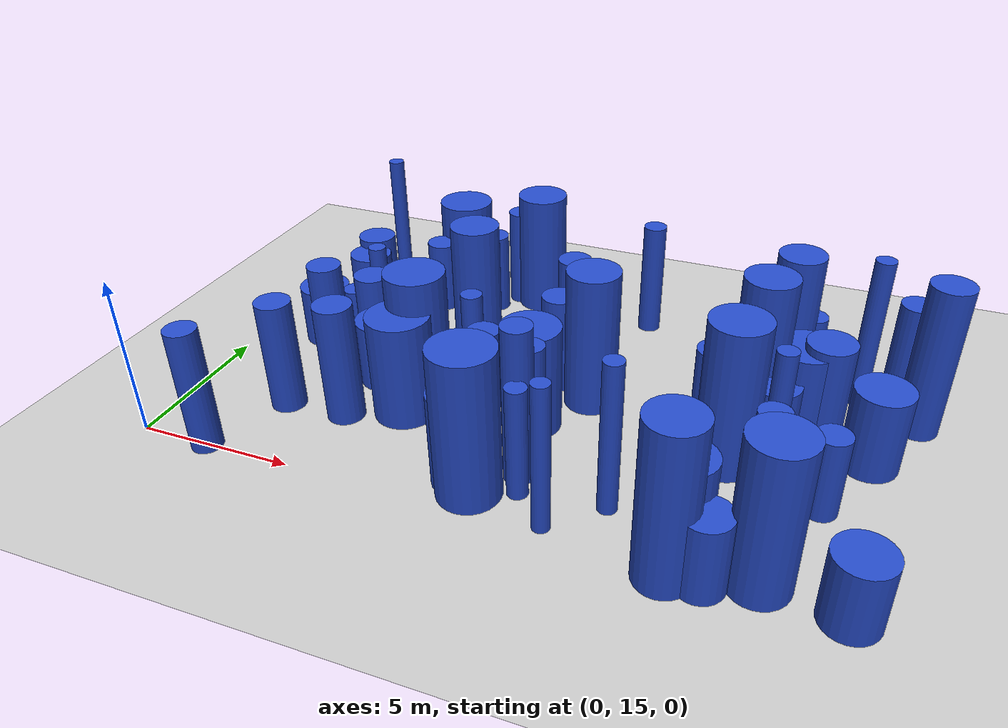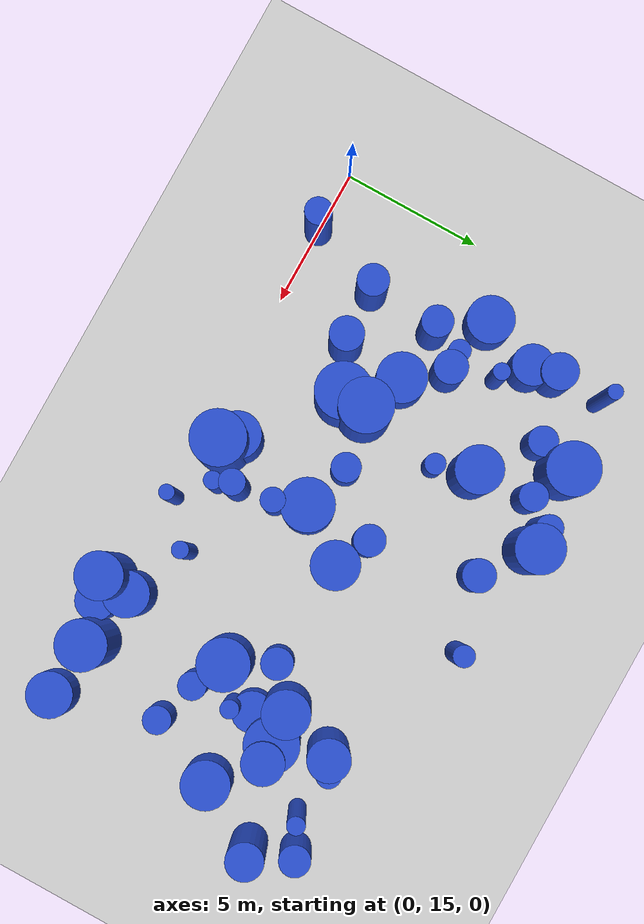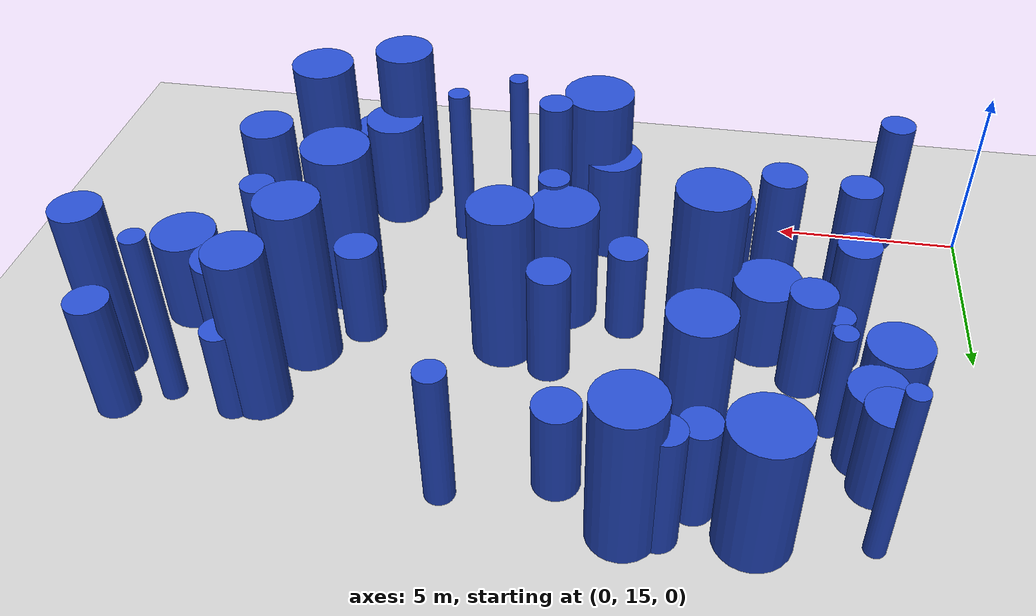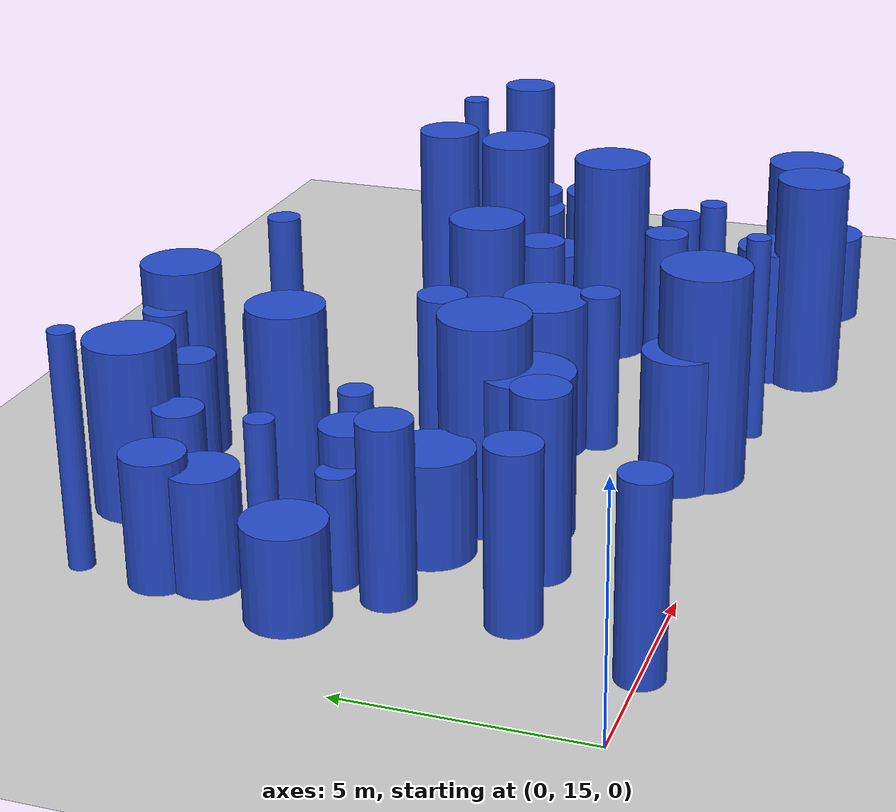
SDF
<sdf version="1.6">
 <world name="default">
  <model name="ground_plane">
   <static>1</static>
   <link name="link">
    <collision name="collision">
     <geometry><plane><normal>0 0 1</normal><size>100 100</size></plane></geometry>
     <surface><friction><ode><mu>100</mu><mu2>50</mu2></ode></friction></surface>
    </collision>
    <visual name="visual">
     <cast_shadows>0</cast_shadows>
     <geometry><plane><normal>0 0 1</normal><size>100 100</size></plane></geometry>
     <material>
      <script><uri>file://media/materials/scripts/gazebo.material</uri><name>Gazebo/Grey</name></script>
     </material>
    </visual>
   </link>
  </model>
  <model name="3">
   <static>0</static>
   <link name="link">
    <inertial>
     <mass>2</mass>
     <inertia><ixx>3.92775</ixx><ixy>0</ixy><ixz>0</ixz><iyy>3.92775</iyy><iyz>0</iyz><izz>0.695081</izz></inertia>
    </inertial>
    <collision name="collision">
     <geometry><cylinder><length>4.63479</length><radius>0.833715</radius></cylinder></geometry>
     <surface><contact><collide_without_contact>1</collide_without_contact></contact></surface>
    </collision>
    <visual name="visual">
     <geometry><cylinder><length>4.63479</length><radius>0.833715</radius></cylinder></geometry>
     <material>
      <script><uri>file://media/materials/scripts/gazebo.material</uri><name>Gazebo/Blue</name></script>
     </material>
    </visual>
    <gravity>0</gravity>
   </link>
   <pose>12.2422 21.1681 2.31739 0 -0 0</pose>
  </model>
  <model name="10">
   <static>0</static>
   <link name="link">
    <inertial>
     <mass>2</mass>
     <inertia><ixx>1.24688</ixx><ixy>0</ixy><ixz>0</ixz><iyy>1.24688</iyy><iyz>0</iyz><izz>0.518703</izz></inertia>
    </inertial>
    <collision name="collision">
     <geometry><cylinder><length>2.43417</length><radius>0.72021</radius></cylinder></geometry>
     <surface><contact><collide_without_contact>1</collide_without_contact></contact></surface>
    </collision>
    <visual name="visual">
     <geometry><cylinder><length>2.43417</length><radius>0.72021</radius></cylinder></geometry>
     <material>
      <script><uri>file://media/materials/scripts/gazebo.material</uri><name>Gazebo/Blue</name></script>
     </material>
    </visual>
    <gravity>0</gravity>
   </link>
   <pose>3.05727 23.7254 1.21708 0 -0 0</pose>
  </model>
  <model name="12">
   <static>0</static>
   <link name="link">
    <inertial>
     <mass>2</mass>
     <inertia><ixx>4.25183</ixx><ixy>0</ixy><ixz>0</ixz><iyy>4.25183</iyy><iyz>0</iyz><izz>0.805611</izz></inertia>
    </inertial>
    <collision name="collision">
     <geometry><cylinder><length>4.80564</length><radius>0.897558</radius></cylinder></geometry>
     <surface><contact><collide_without_contact>1</collide_without_contact></contact></surface>
    </collision>
    <visual name="visual">
     <geometry><cylinder><length>4.80564</length><radius>0.897558</radius></cylinder></geometry>
     <material>
      <script><uri>file://media/materials/scripts/gazebo.material</uri><name>Gazebo/Blue</name></script>
     </material>
    </visual>
    <gravity>0</gravity>
   </link>
   <pose>16.8242 19.5526 2.40282 0 -0 0</pose>
  </model>
  <model name="20">
   <static>0</static>
   <link name="link">
    <inertial>
     <mass>2</mass>
     <inertia>
      <ixx>1.75585</ixx>
      <ixy>0</ixy>
      <ixz>0</ixz>
      <iyy>1.75585</iyy>
      <iyz>0</iyz>
      <izz>0.0905961</izz>
     </inertia>
    </inertial>
    <collision name="collision">
     <geometry><cylinder><length>3.20364</length><radius>0.300992</radius></cylinder></geometry>
     <surface><contact><collide_without_contact>1</collide_without_contact></contact></surface>
    </collision>
    <visual name="visual">
     <geometry><cylinder><length>3.20364</length><radius>0.300992</radius></cylinder></geometry>
     <material>
      <script><uri>file://media/materials/scripts/gazebo.material</uri><name>Gazebo/Blue</name></script>
     </material>
    </visual>
    <gravity>0</gravity>
   </link>
   <pose>3.87578 22.8858 1.60182 0 -0 0</pose>
  </model>
  <model name="34">
   <static>0</static>
   <link name="link">
    <inertial>
     <mass>2</mass>
     <inertia><ixx>2.73964</ixx><ixy>0</ixy><ixz>0</ixz><iyy>2.73964</iyy><iyz>0</iyz><izz>0.355039</izz></inertia>
    </inertial>
    <collision name="collision">
     <geometry><cylinder><length>3.92081</length><radius>0.595852</radius></cylinder></geometry>
     <surface><contact><collide_without_contact>1</collide_without_contact></contact></surface>
    </collision>
    <visual name="visual">
     <geometry><cylinder><length>3.92081</length><radius>0.595852</radius></cylinder></geometry>
     <material>
      <script><uri>file://media/materials/scripts/gazebo.material</uri><name>Gazebo/Blue</name></script>
     </material>
    </visual>
    <gravity>0</gravity>
   </link>
   <pose>5.35862 17.7826 1.9604 0 -0 0</pose>
  </model>
  <model name="36">
   <static>0</static>
   <link name="link">
    <inertial>
     <mass>2</mass>
     <inertia><ixx>1.02322</ixx><ixy>0</ixy><ixz>0</ixz><iyy>1.02322</iyy><iyz>0</iyz><izz>0.699364</izz></inertia>
    </inertial>
    <collision name="collision">
     <geometry><cylinder><length>2.01028</length><radius>0.83628</radius></cylinder></geometry>
     <surface><contact><collide_without_contact>1</collide_without_contact></contact></surface>
    </collision>
    <visual name="visual">
     <geometry><cylinder><length>2.01028</length><radius>0.83628</radius></cylinder></geometry>
     <material>
      <script><uri>file://media/materials/scripts/gazebo.material</uri><name>Gazebo/Blue</name></script>
     </material>
    </visual>
    <gravity>0</gravity>
   </link>
   <pose>2.3337 21.7478 1.00514 0 -0 0</pose>
  </model>
  <model name="45">
   <static>0</static>
   <link name="link">
    <inertial>
     <mass>2</mass>
     <inertia><ixx>2.79189</ixx><ixy>0</ixy><ixz>0</ixz><iyy>2.79189</iyy><iyz>0</iyz><izz>0.226924</izz></inertia>
    </inertial>
    <collision name="collision">
     <geometry><cylinder><length>4.00881</length><radius>0.476365</radius></cylinder></geometry>
     <surface><contact><collide_without_contact>1</collide_without_contact></contact></surface>
    </collision>
    <visual name="visual">
     <geometry><cylinder><length>4.00881</length><radius>0.476365</radius></cylinder></geometry>
     <material>
      <script><uri>file://media/materials/scripts/gazebo.material</uri><name>Gazebo/Blue</name></script>
     </material>
    </visual>
    <gravity>0</gravity>
   </link>
   <pose>2.27674 14.996 2.00441 0 -0 0</pose>
  </model>
  <model name="53">
   <static>0</static>
   <link name="link">
    <inertial>
     <mass>2</mass>
     <inertia><ixx>2.15544</ixx><ixy>0</ixy><ixz>0</ixz><iyy>2.15544</iyy><iyz>0</iyz><izz>0.1005</izz></inertia>
    </inertial>
    <collision name="collision">
     <geometry><cylinder><length>3.55403</length><radius>0.317017</radius></cylinder></geometry>
     <surface><contact><collide_without_contact>1</collide_without_contact></contact></surface>
    </collision>
    <visual name="visual">
     <geometry><cylinder><length>3.55403</length><radius>0.317017</radius></cylinder></geometry>
     <material>
      <script><uri>file://media/materials/scripts/gazebo.material</uri><name>Gazebo/Blue</name></script>
     </material>
    </visual>
    <gravity>0</gravity>
   </link>
   <pose>11.7398 16.245 1.77701 0 -0 0</pose>
  </model>
  <model name="60">
   <static>0</static>
   <link name="link">
    <inertial>
     <mass>2</mass>
     <inertia>
      <ixx>3.31655</ixx>
      <ixy>0</ixy>
      <ixz>0</ixz>
      <iyy>3.31655</iyy>
      <iyz>0</iyz>
      <izz>0.0764342</izz>
     </inertia>
    </inertial>
    <collision name="collision">
     <geometry><cylinder><length>4.43509</length><radius>0.276467</radius></cylinder></geometry>
     <surface><contact><collide_without_contact>1</collide_without_contact></contact></surface>
    </collision>
    <visual name="visual">
     <geometry><cylinder><length>4.43509</length><radius>0.276467</radius></cylinder></geometry>
     <material>
      <script><uri>file://media/materials/scripts/gazebo.material</uri><name>Gazebo/Blue</name></script>
     </material>
    </visual>
    <gravity>0</gravity>
   </link>
   <pose>17.1664 21.937 2.21754 0 -0 0</pose>
  </model>
  <model name="75">
   <static>0</static>
   <link name="link">
    <inertial>
     <mass>2</mass>
     <inertia><ixx>1.89918</ixx><ixy>0</ixy><ixz>0</ixz><iyy>1.89918</iyy><iyz>0</iyz><izz>0.308256</izz></inertia>
    </inertial>
    <collision name="collision">
     <geometry><cylinder><length>3.23579</length><radius>0.555208</radius></cylinder></geometry>
     <surface><contact><collide_without_contact>1</collide_without_contact></contact></surface>
    </collision>
    <visual name="visual">
     <geometry><cylinder><length>3.23579</length><radius>0.555208</radius></cylinder></geometry>
     <material>
      <script><uri>file://media/materials/scripts/gazebo.material</uri><name>Gazebo/Blue</name></script>
     </material>
    </visual>
    <gravity>0</gravity>
   </link>
   <pose>10.9513 21.7728 1.61789 0 -0 0</pose>
  </model>
  <model name="79">
   <static>0</static>
   <link name="link">
    <inertial>
     <mass>2</mass>
     <inertia><ixx>1.08131</ixx><ixy>0</ixy><ixz>0</ixz><iyy>1.08131</iyy><iyz>0</iyz><izz>0.651344</izz></inertia>
    </inertial>
    <collision name="collision">
     <geometry><cylinder><length>2.12928</length><radius>0.807059</radius></cylinder></geometry>
     <surface><contact><collide_without_contact>1</collide_without_contact></contact></surface>
    </collision>
    <visual name="visual">
     <geometry><cylinder><length>2.12928</length><radius>0.807059</radius></cylinder></geometry>
     <material>
      <script><uri>file://media/materials/scripts/gazebo.material</uri><name>Gazebo/Blue</name></script>
     </material>
    </visual>
    <gravity>0</gravity>
   </link>
   <pose>20.7416 14.8606 1.06464 0 -0 0</pose>
  </model>
  <model name="88">
   <static>0</static>
   <link name="link">
    <inertial>
     <mass>2</mass>
     <inertia><ixx>4.31393</ixx><ixy>0</ixy><ixz>0</ixz><iyy>4.31393</iyy><iyz>0</iyz><izz>0.417532</izz></inertia>
    </inertial>
    <collision name="collision">
     <geometry><cylinder><length>4.96296</length><radius>0.646167</radius></cylinder></geometry>
     <surface><contact><collide_without_contact>1</collide_without_contact></contact></surface>
    </collision>
    <visual name="visual">
     <geometry><cylinder><length>4.96296</length><radius>0.646167</radius></cylinder></geometry>
     <material>
      <script><uri>file://media/materials/scripts/gazebo.material</uri><name>Gazebo/Blue</name></script>
     </material>
    </visual>
    <gravity>0</gravity>
   </link>
   <pose>22.0212 23.2428 2.48148 0 -0 0</pose>
  </model>
  <model name="93">
   <static>0</static>
   <link name="link">
    <inertial>
     <mass>2</mass>
     <inertia><ixx>1.32771</ixx><ixy>0</ixy><ixz>0</ixz><iyy>1.32771</iyy><iyz>0</iyz><izz>0.270722</izz></inertia>
    </inertial>
    <collision name="collision">
     <geometry><cylinder><length>2.67471</length><radius>0.520309</radius></cylinder></geometry>
     <surface><contact><collide_without_contact>1</collide_without_contact></contact></surface>
    </collision>
    <visual name="visual">
     <geometry><cylinder><length>2.67471</length><radius>0.520309</radius></cylinder></geometry>
     <material>
      <script><uri>file://media/materials/scripts/gazebo.material</uri><name>Gazebo/Blue</name></script>
     </material>
    </visual>
    <gravity>0</gravity>
   </link>
   <pose>9.17424 19.8977 1.33735 0 -0 0</pose>
  </model>
  <model name="111">
   <static>0</static>
   <link name="link">
    <inertial>
     <mass>2</mass>
     <inertia><ixx>1.44019</ixx><ixy>0</ixy><ixz>0</ixz><iyy>1.44019</iyy><iyz>0</iyz><izz>0.418293</izz></inertia>
    </inertial>
    <collision name="collision">
     <geometry><cylinder><length>2.71777</length><radius>0.646756</radius></cylinder></geometry>
     <surface><contact><collide_without_contact>1</collide_without_contact></contact></surface>
    </collision>
    <visual name="visual">
     <geometry><cylinder><length>2.71777</length><radius>0.646756</radius></cylinder></geometry>
     <material>
      <script><uri>file://media/materials/scripts/gazebo.material</uri><name>Gazebo/Blue</name></script>
     </material>
    </visual>
    <gravity>0</gravity>
   </link>
   <pose>2.84721 24.6218 1.35889 0 -0 0</pose>
  </model>
  <model name="112">
   <static>0</static>
   <link name="link">
    <inertial>
     <mass>2</mass>
     <inertia><ixx>2.22649</ixx><ixy>0</ixy><ixz>0</ixz><iyy>2.22649</iyy><iyz>0</iyz><izz>0.105243</izz></inertia>
    </inertial>
    <collision name="collision">
     <geometry><cylinder><length>3.61154</length><radius>0.324412</radius></cylinder></geometry>
     <surface><contact><collide_without_contact>1</collide_without_contact></contact></surface>
    </collision>
    <visual name="visual">
     <geometry><cylinder><length>3.61154</length><radius>0.324412</radius></cylinder></geometry>
     <material>
      <script><uri>file://media/materials/scripts/gazebo.material</uri><name>Gazebo/Blue</name></script>
     </material>
    </visual>
    <gravity>0</gravity>
   </link>
   <pose>18.0812 20.4251 1.80577 0 -0 0</pose>
  </model>
  <model name="113">
   <static>0</static>
   <link name="link">
    <inertial>
     <mass>2</mass>
     <inertia><ixx>1.81638</ixx><ixy>0</ixy><ixz>0</ixz><iyy>1.81638</iyy><iyz>0</iyz><izz>0.565945</izz></inertia>
    </inertial>
    <collision name="collision">
     <geometry><cylinder><length>3.03323</length><radius>0.752293</radius></cylinder></geometry>
     <surface><contact><collide_without_contact>1</collide_without_contact></contact></surface>
    </collision>
    <visual name="visual">
     <geometry><cylinder><length>3.03323</length><radius>0.752293</radius></cylinder></geometry>
     <material>
      <script><uri>file://media/materials/scripts/gazebo.material</uri><name>Gazebo/Blue</name></script>
     </material>
    </visual>
    <gravity>0</gravity>
   </link>
   <pose>19.179 22.2746 1.51661 0 -0 0</pose>
  </model>
  <model name="117">
   <static>0</static>
   <link name="link">
    <inertial>
     <mass>2</mass>
     <inertia>
      <ixx>4.11227</ixx>
      <ixy>0</ixy>
      <ixz>0</ixz>
      <iyy>4.11227</iyy>
      <iyz>0</iyz>
      <izz>0.0692889</izz>
     </inertia>
    </inertial>
    <collision name="collision">
     <geometry><cylinder><length>4.94629</length><radius>0.263228</radius></cylinder></geometry>
     <surface><contact><collide_without_contact>1</collide_without_contact></contact></surface>
    </collision>
    <visual name="visual">
     <geometry><cylinder><length>4.94629</length><radius>0.263228</radius></cylinder></geometry>
     <material>
      <script><uri>file://media/materials/scripts/gazebo.material</uri><name>Gazebo/Blue</name></script>
     </material>
    </visual>
    <gravity>0</gravity>
   </link>
   <pose>2.90857 26.37 2.47314 0 -0 0</pose>
  </model>
  <model name="135">
   <static>0</static>
   <link name="link">
    <inertial>
     <mass>2</mass>
     <inertia><ixx>1.0015</ixx><ixy>0</ixy><ixz>0</ixz><iyy>1.0015</iyy><iyz>0</iyz><izz>0.153154</izz></inertia>
    </inertial>
    <collision name="collision">
     <geometry><cylinder><length>2.35575</length><radius>0.391349</radius></cylinder></geometry>
     <surface><contact><collide_without_contact>1</collide_without_contact></contact></surface>
    </collision>
    <visual name="visual">
     <geometry><cylinder><length>2.35575</length><radius>0.391349</radius></cylinder></geometry>
     <material>
      <script><uri>file://media/materials/scripts/gazebo.material</uri><name>Gazebo/Blue</name></script>
     </material>
    </visual>
    <gravity>0</gravity>
   </link>
   <pose>3.82412 21.3325 1.17787 0 -0 0</pose>
  </model>
  <model name="143">
   <static>0</static>
   <link name="link">
    <inertial>
     <mass>2</mass>
     <inertia><ixx>1.28938</ixx><ixy>0</ixy><ixz>0</ixz><iyy>1.28938</iyy><iyz>0</iyz><izz>0.344752</izz></inertia>
    </inertial>
    <collision name="collision">
     <geometry><cylinder><length>2.58882</length><radius>0.587156</radius></cylinder></geometry>
     <surface><contact><collide_without_contact>1</collide_without_contact></contact></surface>
    </collision>
    <visual name="visual">
     <geometry><cylinder><length>2.58882</length><radius>0.587156</radius></cylinder></geometry>
     <material>
      <script><uri>file://media/materials/scripts/gazebo.material</uri><name>Gazebo/Blue</name></script>
     </material>
    </visual>
    <gravity>0</gravity>
   </link>
   <pose>10.178 25.574 1.29441 0 -0 0</pose>
  </model>
  <model name="152">
   <static>0</static>
   <link name="link">
    <inertial>
     <mass>2</mass>
     <inertia>
      <ixx>0.925592</ixx>
      <ixy>0</ixy>
      <ixz>0</ixz>
      <iyy>0.925592</iyy>
      <iyz>0</iyz>
      <izz>0.517136</izz>
     </inertia>
    </inertial>
    <collision name="collision">
     <geometry><cylinder><length>2.00054</length><radius>0.719122</radius></cylinder></geometry>
     <surface><contact><collide_without_contact>1</collide_without_contact></contact></surface>
    </collision>
    <visual name="visual">
     <geometry><cylinder><length>2.00054</length><radius>0.719122</radius></cylinder></geometry>
     <material>
      <script><uri>file://media/materials/scripts/gazebo.material</uri><name>Gazebo/Blue</name></script>
     </material>
    </visual>
    <gravity>0</gravity>
   </link>
   <pose>17.9226 21.1337 1.00027 0 -0 0</pose>
  </model>
  <model name="153">
   <static>0</static>
   <link name="link">
    <inertial>
     <mass>2</mass>
     <inertia>
      <ixx>0.942589</ixx>
      <ixy>0</ixy>
      <ixz>0</ixz>
      <iyy>0.942589</iyy>
      <iyz>0</iyz>
      <izz>0.138799</izz>
     </inertia>
    </inertial>
    <collision name="collision">
     <geometry><cylinder><length>2.28892</length><radius>0.372557</radius></cylinder></geometry>
     <surface><contact><collide_without_contact>1</collide_without_contact></contact></surface>
    </collision>
    <visual name="visual">
     <geometry><cylinder><length>2.28892</length><radius>0.372557</radius></cylinder></geometry>
     <material>
      <script><uri>file://media/materials/scripts/gazebo.material</uri><name>Gazebo/Blue</name></script>
     </material>
    </visual>
    <gravity>0</gravity>
   </link>
   <pose>7.58174 22.4658 1.14446 0 -0 0</pose>
  </model>
  <model name="164">
   <static>0</static>
   <link name="link">
    <inertial>
     <mass>2</mass>
     <inertia>
      <ixx>4.18831</ixx>
      <ixy>0</ixy>
      <ixz>0</ixz>
      <iyy>4.18831</iyy>
      <iyz>0</iyz>
      <izz>0.0988165</izz>
     </inertia>
    </inertial>
    <collision name="collision">
     <geometry><cylinder><length>4.98331</length><radius>0.314351</radius></cylinder></geometry>
     <surface><contact><collide_without_contact>1</collide_without_contact></contact></surface>
    </collision>
    <visual name="visual">
     <geometry><cylinder><length>4.98331</length><radius>0.314351</radius></cylinder></geometry>
     <material>
      <script><uri>file://media/materials/scripts/gazebo.material</uri><name>Gazebo/Blue</name></script>
     </material>
    </visual>
    <gravity>0</gravity>
   </link>
   <pose>20.1959 24.1287 2.49166 0 -0 0</pose>
  </model>
  <model name="180">
   <static>0</static>
   <link name="link">
    <inertial>
     <mass>2</mass>
     <inertia><ixx>4.12682</ixx><ixy>0</ixy><ixz>0</ixz><iyy>4.12682</iyy><iyz>0</iyz><izz>0.535388</izz></inertia>
    </inertial>
    <collision name="collision">
     <geometry><cylinder><length>4.81194</length><radius>0.731702</radius></cylinder></geometry>
     <surface><contact><collide_without_contact>1</collide_without_contact></contact></surface>
    </collision>
    <visual name="visual">
     <geometry><cylinder><length>4.81194</length><radius>0.731702</radius></cylinder></geometry>
     <material>
      <script><uri>file://media/materials/scripts/gazebo.material</uri><name>Gazebo/Blue</name></script>
     </material>
    </visual>
    <gravity>0</gravity>
   </link>
   <pose>17.8674 24.054 2.40597 0 -0 0</pose>
  </model>
  <model name="206">
   <static>0</static>
   <link name="link">
    <inertial>
     <mass>2</mass>
     <inertia><ixx>1.22193</ixx><ixy>0</ixy><ixz>0</ixz><iyy>1.22193</iyy><iyz>0</iyz><izz>0.244229</izz></inertia>
    </inertial>
    <collision name="collision">
     <geometry><cylinder><length>2.56883</length><radius>0.494195</radius></cylinder></geometry>
     <surface><contact><collide_without_contact>1</collide_without_contact></contact></surface>
    </collision>
    <visual name="visual">
     <geometry><cylinder><length>2.56883</length><radius>0.494195</radius></cylinder></geometry>
     <material>
      <script><uri>file://media/materials/scripts/gazebo.material</uri><name>Gazebo/Blue</name></script>
     </material>
    </visual>
    <gravity>0</gravity>
   </link>
   <pose>18.097 18.9432 1.28442 0 -0 0</pose>
  </model>
  <model name="219">
   <static>0</static>
   <link name="link">
    <inertial>
     <mass>2</mass>
     <inertia><ixx>3.42405</ixx><ixy>0</ixy><ixz>0</ixz><iyy>3.42405</iyy><iyz>0</iyz><izz>0.734476</izz></inertia>
    </inertial>
    <collision name="collision">
     <geometry><cylinder><length>4.28263</length><radius>0.857016</radius></cylinder></geometry>
     <surface><contact><collide_without_contact>1</collide_without_contact></contact></surface>
    </collision>
    <visual name="visual">
     <geometry><cylinder><length>4.28263</length><radius>0.857016</radius></cylinder></geometry>
     <material>
      <script><uri>file://media/materials/scripts/gazebo.material</uri><name>Gazebo/Blue</name></script>
     </material>
    </visual>
    <gravity>0</gravity>
   </link>
   <pose>8.51042 26.7746 2.14131 0 -0 0</pose>
  </model>
  <model name="220">
   <static>0</static>
   <link name="link">
    <inertial>
     <mass>2</mass>
     <inertia><ixx>2.01038</ixx><ixy>0</ixy><ixz>0</ixz><iyy>2.01038</iyy><iyz>0</iyz><izz>0.654617</izz></inertia>
    </inertial>
    <collision name="collision">
     <geometry><cylinder><length>3.1778</length><radius>0.809084</radius></cylinder></geometry>
     <surface><contact><collide_without_contact>1</collide_without_contact></contact></surface>
    </collision>
    <visual name="visual">
     <geometry><cylinder><length>3.1778</length><radius>0.809084</radius></cylinder></geometry>
     <material>
      <script><uri>file://media/materials/scripts/gazebo.material</uri><name>Gazebo/Blue</name></script>
     </material>
    </visual>
    <gravity>0</gravity>
   </link>
   <pose>16.4504 15.5437 1.5889 0 -0 0</pose>
  </model>
  <model name="223">
   <static>0</static>
   <link name="link">
    <inertial>
     <mass>2</mass>
     <inertia><ixx>1.49806</ixx><ixy>0</ixy><ixz>0</ixz><iyy>1.49806</iyy><iyz>0</iyz><izz>0.260136</izz></inertia>
    </inertial>
    <collision name="collision">
     <geometry><cylinder><length>2.86495</length><radius>0.510035</radius></cylinder></geometry>
     <surface><contact><collide_without_contact>1</collide_without_contact></contact></surface>
    </collision>
    <visual name="visual">
     <geometry><cylinder><length>2.86495</length><radius>0.510035</radius></cylinder></geometry>
     <material>
      <script><uri>file://media/materials/scripts/gazebo.material</uri><name>Gazebo/Blue</name></script>
     </material>
    </visual>
    <gravity>0</gravity>
   </link>
   <pose>6.98775 25.867 1.43247 0 -0 0</pose>
  </model>
  <model name="227">
   <static>0</static>
   <link name="link">
    <inertial>
     <mass>2</mass>
     <inertia><ixx>3.2296</ixx><ixy>0</ixy><ixz>0</ixz><iyy>3.2296</iyy><iyz>0</iyz><izz>0.688861</izz></inertia>
    </inertial>
    <collision name="collision">
     <geometry><cylinder><length>4.16065</length><radius>0.829977</radius></cylinder></geometry>
     <surface><contact><collide_without_contact>1</collide_without_contact></contact></surface>
    </collision>
    <visual name="visual">
     <geometry><cylinder><length>4.16065</length><radius>0.829977</radius></cylinder></geometry>
     <material>
      <script><uri>file://media/materials/scripts/gazebo.material</uri><name>Gazebo/Blue</name></script>
     </material>
    </visual>
    <gravity>0</gravity>
   </link>
   <pose>7.18961 23.7781 2.08033 0 -0 0</pose>
  </model>
  <model name="236">
   <static>0</static>
   <link name="link">
    <inertial>
     <mass>2</mass>
     <inertia><ixx>1.83847</ixx><ixy>0</ixy><ixz>0</ixz><iyy>1.83847</iyy><iyz>0</iyz><izz>0.675813</izz></inertia>
    </inertial>
    <collision name="collision">
     <geometry><cylinder><length>3.00056</length><radius>0.822079</radius></cylinder></geometry>
     <surface><contact><collide_without_contact>1</collide_without_contact></contact></surface>
    </collision>
    <visual name="visual">
     <geometry><cylinder><length>3.00056</length><radius>0.822079</radius></cylinder></geometry>
     <material>
      <script><uri>file://media/materials/scripts/gazebo.material</uri><name>Gazebo/Blue</name></script>
     </material>
    </visual>
    <gravity>0</gravity>
   </link>
   <pose>10.0049 16.1946 1.50028 0 -0 0</pose>
  </model>
  <model name="238">
   <static>0</static>
   <link name="link">
    <inertial>
     <mass>2</mass>
     <inertia><ixx>3.80887</ixx><ixy>0</ixy><ixz>0</ixz><iyy>3.80887</iyy><iyz>0</iyz><izz>0.89515</izz></inertia>
    </inertial>
    <collision name="collision">
     <geometry><cylinder><length>4.49085</length><radius>0.946124</radius></cylinder></geometry>
     <surface><contact><collide_without_contact>1</collide_without_contact></contact></surface>
    </collision>
    <visual name="visual">
     <geometry><cylinder><length>4.49085</length><radius>0.946124</radius></cylinder></geometry>
     <material>
      <script><uri>file://media/materials/scripts/gazebo.material</uri><name>Gazebo/Blue</name></script>
     </material>
    </visual>
    <gravity>0</gravity>
   </link>
   <pose>7.16971 19.5057 2.24543 0 -0 0</pose>
  </model>
  <model name="249">
   <static>0</static>
   <link name="link">
    <inertial>
     <mass>2</mass>
     <inertia><ixx>1.23712</ixx><ixy>0</ixy><ixz>0</ixz><iyy>1.23712</iyy><iyz>0</iyz><izz>0.195861</izz></inertia>
    </inertial>
    <collision name="collision">
     <geometry><cylinder><length>2.61441</length><radius>0.442562</radius></cylinder></geometry>
     <surface><contact><collide_without_contact>1</collide_without_contact></contact></surface>
    </collision>
    <visual name="visual">
     <geometry><cylinder><length>2.61441</length><radius>0.442562</radius></cylinder></geometry>
     <material>
      <script><uri>file://media/materials/scripts/gazebo.material</uri><name>Gazebo/Blue</name></script>
     </material>
    </visual>
    <gravity>0</gravity>
   </link>
   <pose>18.489 24.402 1.30721 0 -0 0</pose>
  </model>
  <model name="255">
   <static>0</static>
   <link name="link">
    <inertial>
     <mass>2</mass>
     <inertia><ixx>2.41669</ixx><ixy>0</ixy><ixz>0</ixz><iyy>2.41669</iyy><iyz>0</iyz><izz>0.306385</izz></inertia>
    </inertial>
    <collision name="collision">
     <geometry><cylinder><length>3.68524</length><radius>0.55352</radius></cylinder></geometry>
     <surface><contact><collide_without_contact>1</collide_without_contact></contact></surface>
    </collision>
    <visual name="visual">
     <geometry><cylinder><length>3.68524</length><radius>0.55352</radius></cylinder></geometry>
     <material>
      <script><uri>file://media/materials/scripts/gazebo.material</uri><name>Gazebo/Blue</name></script>
     </material>
    </visual>
    <gravity>0</gravity>
   </link>
   <pose>3.34397 17.671 1.84262 0 -0 0</pose>
  </model>
  <model name="257">
   <static>0</static>
   <link name="link">
    <inertial>
     <mass>2</mass>
     <inertia><ixx>2.1861</ixx><ixy>0</ixy><ixz>0</ixz><iyy>2.1861</iyy><iyz>0</iyz><izz>0.186231</izz></inertia>
    </inertial>
    <collision name="collision">
     <geometry><cylinder><length>3.54372</length><radius>0.431545</radius></cylinder></geometry>
     <surface><contact><collide_without_contact>1</collide_without_contact></contact></surface>
    </collision>
    <visual name="visual">
     <geometry><cylinder><length>3.54372</length><radius>0.431545</radius></cylinder></geometry>
     <material>
      <script><uri>file://media/materials/scripts/gazebo.material</uri><name>Gazebo/Blue</name></script>
     </material>
    </visual>
    <gravity>0</gravity>
   </link>
   <pose>11.3445 18.303 1.77186 0 -0 0</pose>
  </model>
  <model name="259">
   <static>0</static>
   <link name="link">
    <inertial>
     <mass>2</mass>
     <inertia><ixx>2.42322</ixx><ixy>0</ixy><ixz>0</ixz><iyy>2.42322</iyy><iyz>0</iyz><izz>0.864295</izz></inertia>
    </inertial>
    <collision name="collision">
     <geometry><cylinder><length>3.45636</length><radius>0.929675</radius></cylinder></geometry>
     <surface><contact><collide_without_contact>1</collide_without_contact></contact></surface>
    </collision>
    <visual name="visual">
     <geometry><cylinder><length>3.45636</length><radius>0.929675</radius></cylinder></geometry>
     <material>
      <script><uri>file://media/materials/scripts/gazebo.material</uri><name>Gazebo/Blue</name></script>
     </material>
    </visual>
    <gravity>0</gravity>
   </link>
   <pose>10.9227 19.397 1.72818 0 -0 0</pose>
  </model>
  <model name="266">
   <static>0</static>
   <link name="link">
    <inertial>
     <mass>2</mass>
     <inertia><ixx>3.94524</ixx><ixy>0</ixy><ixz>0</ixz><iyy>3.94524</iyy><iyz>0</iyz><izz>0.76909</izz></inertia>
    </inertial>
    <collision name="collision">
     <geometry><cylinder><length>4.62214</length><radius>0.876978</radius></cylinder></geometry>
     <surface><contact><collide_without_contact>1</collide_without_contact></contact></surface>
    </collision>
    <visual name="visual">
     <geometry><cylinder><length>4.62214</length><radius>0.876978</radius></cylinder></geometry>
     <material>
      <script><uri>file://media/materials/scripts/gazebo.material</uri><name>Gazebo/Blue</name></script>
     </material>
    </visual>
    <gravity>0</gravity>
   </link>
   <pose>18.537 15.1985 2.31107 0 -0 0</pose>
  </model>
  <model name="276">
   <static>0</static>
   <link name="link">
    <inertial>
     <mass>2</mass>
     <inertia><ixx>4.20934</ixx><ixy>0</ixy><ixz>0</ixz><iyy>4.20934</iyy><iyz>0</iyz><izz>0.919273</izz></inertia>
    </inertial>
    <collision name="collision">
     <geometry><cylinder><length>4.74323</length><radius>0.958787</radius></cylinder></geometry>
     <surface><contact><collide_without_contact>1</collide_without_contact></contact></surface>
    </collision>
    <visual name="visual">
     <geometry><cylinder><length>4.74323</length><radius>0.958787</radius></cylinder></geometry>
     <material>
      <script><uri>file://media/materials/scripts/gazebo.material</uri><name>Gazebo/Blue</name></script>
     </material>
    </visual>
    <gravity>0</gravity>
   </link>
   <pose>10.4648 15.8093 2.37161 0 -0 0</pose>
  </model>
  <model name="293">
   <static>0</static>
   <link name="link">
    <inertial>
     <mass>2</mass>
     <inertia><ixx>2.48886</ixx><ixy>0</ixy><ixz>0</ixz><iyy>2.48886</iyy><iyz>0</iyz><izz>0.977965</izz></inertia>
    </inertial>
    <collision name="collision">
     <geometry><cylinder><length>3.464</length><radius>0.988921</radius></cylinder></geometry>
     <surface><contact><collide_without_contact>1</collide_without_contact></contact></surface>
    </collision>
    <visual name="visual">
     <geometry><cylinder><length>3.464</length><radius>0.988921</radius></cylinder></geometry>
     <material>
      <script><uri>file://media/materials/scripts/gazebo.material</uri><name>Gazebo/Blue</name></script>
     </material>
    </visual>
    <gravity>0</gravity>
   </link>
   <pose>7.02095 18.5874 1.732 0 -0 0</pose>
  </model>
  <model name="299">
   <static>0</static>
   <link name="link">
    <inertial>
     <mass>2</mass>
     <inertia><ixx>1.21488</ixx><ixy>0</ixy><ixz>0</ixz><iyy>1.21488</iyy><iyz>0</iyz><izz>0.277161</izz></inertia>
    </inertial>
    <collision name="collision">
     <geometry><cylinder><length>2.54122</length><radius>0.526461</radius></cylinder></geometry>
     <surface><contact><collide_without_contact>1</collide_without_contact></contact></surface>
    </collision>
    <visual name="visual">
     <geometry><cylinder><length>2.54122</length><radius>0.526461</radius></cylinder></geometry>
     <material>
      <script><uri>file://media/materials/scripts/gazebo.material</uri><name>Gazebo/Blue</name></script>
     </material>
    </visual>
    <gravity>0</gravity>
   </link>
   <pose>5.16135 25.2688 1.27061 0 -0 0</pose>
  </model>
  <model name="308">
   <static>0</static>
   <link name="link">
    <inertial>
     <mass>2</mass>
     <inertia>
      <ixx>3.87809</ixx>
      <ixy>0</ixy>
      <ixz>0</ixz>
      <iyy>3.87809</iyy>
      <iyz>0</iyz>
      <izz>0.0862492</izz>
     </inertia>
    </inertial>
    <collision name="collision">
     <geometry><cylinder><length>4.79685</length><radius>0.293682</radius></cylinder></geometry>
     <surface><contact><collide_without_contact>1</collide_without_contact></contact></surface>
    </collision>
    <visual name="visual">
     <geometry><cylinder><length>4.79685</length><radius>0.293682</radius></cylinder></geometry>
     <material>
      <script><uri>file://media/materials/scripts/gazebo.material</uri><name>Gazebo/Blue</name></script>
     </material>
    </visual>
    <gravity>0</gravity>
   </link>
   <pose>14.2514 16.519 2.39843 0 -0 0</pose>
  </model>
  <model name="326">
   <static>0</static>
   <link name="link">
    <inertial>
     <mass>2</mass>
     <inertia><ixx>4.43176</ixx><ixy>0</ixy><ixz>0</ixz><iyy>4.43176</iyy><iyz>0</iyz><izz>0.666953</izz></inertia>
    </inertial>
    <collision name="collision">
     <geometry><cylinder><length>4.9588</length><radius>0.816672</radius></cylinder></geometry>
     <surface><contact><collide_without_contact>1</collide_without_contact></contact></surface>
    </collision>
    <visual name="visual">
     <geometry><cylinder><length>4.9588</length><radius>0.816672</radius></cylinder></geometry>
     <material>
      <script><uri>file://media/materials/scripts/gazebo.material</uri><name>Gazebo/Blue</name></script>
     </material>
    </visual>
    <gravity>0</gravity>
   </link>
   <pose>16.2575 14.6385 2.4794 0 -0 0</pose>
  </model>
  <model name="349">
   <static>0</static>
   <link name="link">
    <inertial>
     <mass>2</mass>
     <inertia><ixx>4.24335</ixx><ixy>0</ixy><ixz>0</ixz><iyy>4.24335</iyy><iyz>0</iyz><izz>0.202813</izz></inertia>
    </inertial>
    <collision name="collision">
     <geometry><cylinder><length>4.98514</length><radius>0.450347</radius></cylinder></geometry>
     <surface><contact><collide_without_contact>1</collide_without_contact></contact></surface>
    </collision>
    <visual name="visual">
     <geometry><cylinder><length>4.98514</length><radius>0.450347</radius></cylinder></geometry>
     <material>
      <script><uri>file://media/materials/scripts/gazebo.material</uri><name>Gazebo/Blue</name></script>
     </material>
    </visual>
    <gravity>0</gravity>
   </link>
   <pose>11.5112 16.9233 2.49257 0 -0 0</pose>
  </model>
  <model name="361">
   <static>0</static>
   <link name="link">
    <inertial>
     <mass>2</mass>
     <inertia><ixx>1.49712</ixx><ixy>0</ixy><ixz>0</ixz><iyy>1.49712</iyy><iyz>0</iyz><izz>0.316971</izz></inertia>
    </inertial>
    <collision name="collision">
     <geometry><cylinder><length>2.83404</length><radius>0.563001</radius></cylinder></geometry>
     <surface><contact><collide_without_contact>1</collide_without_contact></contact></surface>
    </collision>
    <visual name="visual">
     <geometry><cylinder><length>2.83404</length><radius>0.563001</radius></cylinder></geometry>
     <material>
      <script><uri>file://media/materials/scripts/gazebo.material</uri><name>Gazebo/Blue</name></script>
     </material>
    </visual>
    <gravity>0</gravity>
   </link>
   <pose>16.045 21.0726 1.41702 0 -0 0</pose>
  </model>
  <model name="366">
   <static>0</static>
   <link name="link">
    <inertial>
     <mass>2</mass>
     <inertia><ixx>2.15953</ixx><ixy>0</ixy><ixz>0</ixz><iyy>2.15953</iyy><iyz>0</iyz><izz>0.222557</izz></inertia>
    </inertial>
    <collision name="collision">
     <geometry><cylinder><length>3.50564</length><radius>0.471759</radius></cylinder></geometry>
     <surface><contact><collide_without_contact>1</collide_without_contact></contact></surface>
    </collision>
    <visual name="visual">
     <geometry><cylinder><length>3.50564</length><radius>0.471759</radius></cylinder></geometry>
     <material>
      <script><uri>file://media/materials/scripts/gazebo.material</uri><name>Gazebo/Blue</name></script>
     </material>
    </visual>
    <gravity>0</gravity>
   </link>
   <pose>7.70818 26.785 1.75282 0 -0 0</pose>
  </model>
  <model name="371">
   <static>0</static>
   <link name="link">
    <inertial>
     <mass>2</mass>
     <inertia><ixx>2.66623</ixx><ixy>0</ixy><ixz>0</ixz><iyy>2.66623</iyy><iyz>0</iyz><izz>0.144195</izz></inertia>
    </inertial>
    <collision name="collision">
     <geometry><cylinder><length>3.94523</length><radius>0.37973</radius></cylinder></geometry>
     <surface><contact><collide_without_contact>1</collide_without_contact></contact></surface>
    </collision>
    <visual name="visual">
     <geometry><cylinder><length>3.94523</length><radius>0.37973</radius></cylinder></geometry>
     <material>
      <script><uri>file://media/materials/scripts/gazebo.material</uri><name>Gazebo/Blue</name></script>
     </material>
    </visual>
    <gravity>0</gravity>
   </link>
   <pose>12.7962 26.315 1.97261 0 -0 0</pose>
  </model>
  <model name="385">
   <static>0</static>
   <link name="link">
    <inertial>
     <mass>2</mass>
     <inertia><ixx>1.75455</ixx><ixy>0</ixy><ixz>0</ixz><iyy>1.75455</iyy><iyz>0</iyz><izz>0.934983</izz></inertia>
    </inertial>
    <collision name="collision">
     <geometry><cylinder><length>2.77891</length><radius>0.966945</radius></cylinder></geometry>
     <surface><contact><collide_without_contact>1</collide_without_contact></contact></surface>
    </collision>
    <visual name="visual">
     <geometry><cylinder><length>2.77891</length><radius>0.966945</radius></cylinder></geometry>
     <material>
      <script><uri>file://media/materials/scripts/gazebo.material</uri><name>Gazebo/Blue</name></script>
     </material>
    </visual>
    <gravity>0</gravity>
   </link>
   <pose>18.5239 22.2363 1.38946 0 -0 0</pose>
  </model>
  <model name="398">
   <static>0</static>
   <link name="link">
    <inertial>
     <mass>2</mass>
     <inertia>
      <ixx>3.61487</ixx>
      <ixy>0</ixy>
      <ixz>0</ixz>
      <iyy>3.61487</iyy>
      <iyz>0</iyz>
      <izz>0.0706808</izz>
     </inertia>
    </inertial>
    <collision name="collision">
     <geometry><cylinder><length>4.63435</length><radius>0.265859</radius></cylinder></geometry>
     <surface><contact><collide_without_contact>1</collide_without_contact></contact></surface>
    </collision>
    <visual name="visual">
     <geometry><cylinder><length>4.63435</length><radius>0.265859</radius></cylinder></geometry>
     <material>
      <script><uri>file://media/materials/scripts/gazebo.material</uri><name>Gazebo/Blue</name></script>
     </material>
    </visual>
    <gravity>0</gravity>
   </link>
   <pose>12.8267 15.2021 2.31717 0 -0 0</pose>
  </model>
  <model name="410">
   <static>0</static>
   <link name="link">
    <inertial>
     <mass>2</mass>
     <inertia><ixx>2.74188</ixx><ixy>0</ixy><ixz>0</ixz><iyy>2.74188</iyy><iyz>0</iyz><izz>0.875787</izz></inertia>
    </inertial>
    <collision name="collision">
     <geometry><cylinder><length>3.71805</length><radius>0.935835</radius></cylinder></geometry>
     <surface><contact><collide_without_contact>1</collide_without_contact></contact></surface>
    </collision>
    <visual name="visual">
     <geometry><cylinder><length>3.71805</length><radius>0.935835</radius></cylinder></geometry>
     <material>
      <script><uri>file://media/materials/scripts/gazebo.material</uri><name>Gazebo/Blue</name></script>
     </material>
    </visual>
    <gravity>0</gravity>
   </link>
   <pose>5.60676 26.5117 1.85902 0 -0 0</pose>
  </model>
  <model name="411">
   <static>0</static>
   <link name="link">
    <inertial>
     <mass>2</mass>
     <inertia><ixx>1.68072</ixx><ixy>0</ixy><ixz>0</ixz><iyy>1.68072</iyy><iyz>0</iyz><izz>0.351227</izz></inertia>
    </inertial>
    <collision name="collision">
     <geometry><cylinder><length>3.0051</length><radius>0.592644</radius></cylinder></geometry>
     <surface><contact><collide_without_contact>1</collide_without_contact></contact></surface>
    </collision>
    <visual name="visual">
     <geometry><cylinder><length>3.0051</length><radius>0.592644</radius></cylinder></geometry>
     <material>
      <script><uri>file://media/materials/scripts/gazebo.material</uri><name>Gazebo/Blue</name></script>
     </material>
    </visual>
    <gravity>0</gravity>
   </link>
   <pose>4.53345 21.3381 1.50255 0 -0 0</pose>
  </model>
  <model name="416">
   <static>0</static>
   <link name="link">
    <inertial>
     <mass>2</mass>
     <inertia><ixx>2.10903</ixx><ixy>0</ixy><ixz>0</ixz><iyy>2.10903</iyy><iyz>0</iyz><izz>0.297771</izz></inertia>
    </inertial>
    <collision name="collision">
     <geometry><cylinder><length>3.42941</length><radius>0.545684</radius></cylinder></geometry>
     <surface><contact><collide_without_contact>1</collide_without_contact></contact></surface>
    </collision>
    <visual name="visual">
     <geometry><cylinder><length>3.42941</length><radius>0.545684</radius></cylinder></geometry>
     <material>
      <script><uri>file://media/materials/scripts/gazebo.material</uri><name>Gazebo/Blue</name></script>
     </material>
    </visual>
    <gravity>0</gravity>
   </link>
   <pose>21.4205 24.7439 1.71471 0 -0 0</pose>
  </model>
  <model name="441">
   <static>0</static>
   <link name="link">
    <inertial>
     <mass>2</mass>
     <inertia><ixx>1.22216</ixx><ixy>0</ixy><ixz>0</ixz><iyy>1.22216</iyy><iyz>0</iyz><izz>0.243742</izz></inertia>
    </inertial>
    <collision name="collision">
     <geometry><cylinder><length>2.56938</length><radius>0.493702</radius></cylinder></geometry>
     <surface><contact><collide_without_contact>1</collide_without_contact></contact></surface>
    </collision>
    <visual name="visual">
     <geometry><cylinder><length>2.56938</length><radius>0.493702</radius></cylinder></geometry>
     <material>
      <script><uri>file://media/materials/scripts/gazebo.material</uri><name>Gazebo/Blue</name></script>
     </material>
    </visual>
    <gravity>0</gravity>
   </link>
   <pose>19.6683 18.4676 1.28469 0 -0 0</pose>
  </model>
  <model name="449">
   <static>0</static>
   <link name="link">
    <inertial>
     <mass>2</mass>
     <inertia><ixx>2.45616</ixx><ixy>0</ixy><ixz>0</ixz><iyy>2.45616</iyy><iyz>0</iyz><izz>0.301491</izz></inertia>
    </inertial>
    <collision name="collision">
     <geometry><cylinder><length>3.71921</length><radius>0.549082</radius></cylinder></geometry>
     <surface><contact><collide_without_contact>1</collide_without_contact></contact></surface>
    </collision>
    <visual name="visual">
     <geometry><cylinder><length>3.71921</length><radius>0.549082</radius></cylinder></geometry>
     <material>
      <script><uri>file://media/materials/scripts/gazebo.material</uri><name>Gazebo/Blue</name></script>
     </material>
    </visual>
    <gravity>0</gravity>
   </link>
   <pose>3.51584 20.2042 1.8596 0 -0 0</pose>
  </model>
  <model name="452">
   <static>0</static>
   <link name="link">
    <inertial>
     <mass>2</mass>
     <inertia><ixx>1.15992</ixx><ixy>0</ixy><ixz>0</ixz><iyy>1.15992</iyy><iyz>0</iyz><izz>0.481225</izz></inertia>
    </inertial>
    <collision name="collision">
     <geometry><cylinder><length>2.34859</length><radius>0.693704</radius></cylinder></geometry>
     <surface><contact><collide_without_contact>1</collide_without_contact></contact></surface>
    </collision>
    <visual name="visual">
     <geometry><cylinder><length>2.34859</length><radius>0.693704</radius></cylinder></geometry>
     <material>
      <script><uri>file://media/materials/scripts/gazebo.material</uri><name>Gazebo/Blue</name></script>
     </material>
    </visual>
    <gravity>0</gravity>
   </link>
   <pose>17.1938 14.679 1.17429 0 -0 0</pose>
  </model>
  <model name="462">
   <static>0</static>
   <link name="link">
    <inertial>
     <mass>2</mass>
     <inertia><ixx>1.21866</ixx><ixy>0</ixy><ixz>0</ixz><iyy>1.21866</iyy><iyz>0</iyz><izz>0.780894</izz></inertia>
    </inertial>
    <collision name="collision">
     <geometry><cylinder><length>2.22919</length><radius>0.883682</radius></cylinder></geometry>
     <surface><contact><collide_without_contact>1</collide_without_contact></contact></surface>
    </collision>
    <visual name="visual">
     <geometry><cylinder><length>2.22919</length><radius>0.883682</radius></cylinder></geometry>
     <material>
      <script><uri>file://media/materials/scripts/gazebo.material</uri><name>Gazebo/Blue</name></script>
     </material>
    </visual>
    <gravity>0</gravity>
   </link>
   <pose>5.56035 20.0638 1.11459 0 -0 0</pose>
  </model>
  <model name="465">
   <static>0</static>
   <link name="link">
    <inertial>
     <mass>2</mass>
     <inertia><ixx>4.33139</ixx><ixy>0</ixy><ixz>0</ixz><iyy>4.33139</iyy><iyz>0</iyz><izz>0.675549</izz></inertia>
    </inertial>
    <collision name="collision">
     <geometry><cylinder><length>4.89507</length><radius>0.821918</radius></cylinder></geometry>
     <surface><contact><collide_without_contact>1</collide_without_contact></contact></surface>
    </collision>
    <visual name="visual">
     <geometry><cylinder><length>4.89507</length><radius>0.821918</radius></cylinder></geometry>
     <material>
      <script><uri>file://media/materials/scripts/gazebo.material</uri><name>Gazebo/Blue</name></script>
     </material>
    </visual>
    <gravity>0</gravity>
   </link>
   <pose>17.2411 22.1156 2.44753 0 -0 0</pose>
  </model>
  <model name="495">
   <static>0</static>
   <link name="link">
    <inertial>
     <mass>2</mass>
     <inertia><ixx>1.52234</ixx><ixy>0</ixy><ixz>0</ixz><iyy>1.52234</iyy><iyz>0</iyz><izz>0.732044</izz></inertia>
    </inertial>
    <collision name="collision">
     <geometry><cylinder><length>2.634</length><radius>0.855596</radius></cylinder></geometry>
     <surface><contact><collide_without_contact>1</collide_without_contact></contact></surface>
    </collision>
    <visual name="visual">
     <geometry><cylinder><length>2.634</length><radius>0.855596</radius></cylinder></geometry>
     <material>
      <script><uri>file://media/materials/scripts/gazebo.material</uri><name>Gazebo/Blue</name></script>
     </material>
    </visual>
    <gravity>0</gravity>
   </link>
   <pose>20.7781 20.952 1.317 0 -0 0</pose>
  </model>
 </world>
</sdf>
